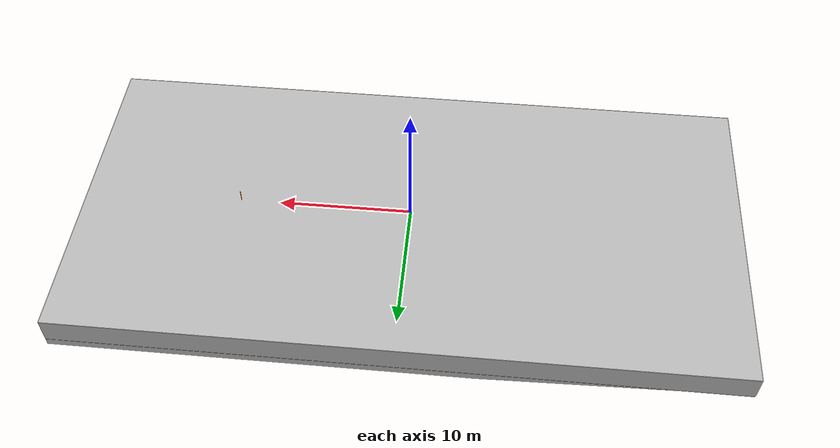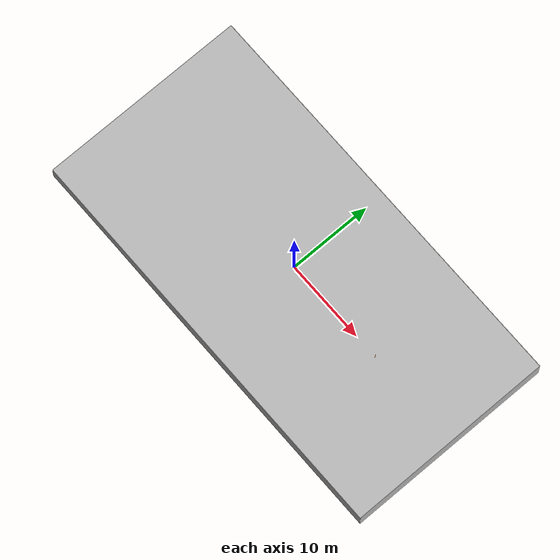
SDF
<?xml version="1.0"?>
<!-- Auto-generated by scripts/generate_worlds.py — do not edit by hand. -->
<sdf version="1.9">
  <world name="marv_prequal">
    <scene>
      <ambient>0.01 0.01 0.01 1.0</ambient>
      <background>0.05 0.08 0.15 1.0</background>
      <shadows>true</shadows>
    </scene>
    <physics name="1ms" type="ignored">
      <max_step_size>0.001</max_step_size>
      <real_time_factor>1.0</real_time_factor>
    </physics>
    <plugin filename="gz-sim-physics-system" name="gz::sim::systems::Physics"/>
    <plugin filename="gz-sim-user-commands-system" name="gz::sim::systems::UserCommands"/>
    <plugin filename="gz-sim-scene-broadcaster-system" name="gz::sim::systems::SceneBroadcaster"/>
    <plugin filename="gz-sim-sensors-system" name="gz::sim::systems::Sensors">
      <render_engine>ogre2</render_engine>
    </plugin>
    <!-- Required for ArduPilotPlugin JSON (imu_sensor -> imuMsgValid). -->
    <plugin filename="gz-sim-imu-system" name="gz::sim::systems::Imu"/>
    <spherical_coordinates>
      <surface_model>EARTH_WGS84</surface_model>
      <world_frame_orientation>ENU</world_frame_orientation>
      <latitude_deg>1.309562</latitude_deg>
      <longitude_deg>103.7745783</longitude_deg>
      <elevation>0.0</elevation>
      <heading_deg>0.0</heading_deg>
    </spherical_coordinates>
    <light type="directional" name="sun1">
      <pose>50 0 150 0 0 0</pose>
      <diffuse>1 1 1 1</diffuse>
      <specular>0.1 0.1 0.1 1</specular>
      <direction>0.3 0.3 -1</direction>
      <cast_shadows>false</cast_shadows>
    </light>
    <light type="directional" name="sun_diffuse">
      <pose>-50 0 -150 0 0 0</pose>
      <diffuse>0.6 0.6 0.6 1</diffuse>
      <direction>-0.3 -0.3 -1</direction>
      <cast_shadows>false</cast_shadows>
    </light>
    <!-- Full pre-qual (bb_worlds). Sub spawn: x=0 y=0 z=-2 (3 m behind gate). Layout matches bb_worlds robosub_2025_prequali.world. -->
    <include>
      <name>pool</name>
      <uri>model://sp_swimming_pool</uri>
      <pose>0 0 0 0 0 0</pose>
    </include>
    <include>
      <name>surface</name>
      <uri>model://pool_waves</uri>
      <pose>0 0 0 0 0 0</pose>
    </include>
    <include>
      <name>course</name>
      <uri>model://marv_prequal_course_bb</uri>
      <pose>3 0 -2 0 0 0</pose>
    </include>

    <plugin filename="gz-sim-buoyancy-system" name="gz::sim::systems::Buoyancy">
      <graded_buoyancy>
        <default_density>1000</default_density>
        <density_change>
          <above_depth>0</above_depth>
          <density>1</density>
        </density_change>
      </graded_buoyancy>
    </plugin>
  </world>
</sdf>

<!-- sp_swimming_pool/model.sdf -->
<sdf version="1.11">
  <model name="sp_swimming_pool">
    <static>true</static>
    <link name="link">

      <visual name="pool">
        <pose>0 0 0 0 0 0</pose>
        <geometry>
          <mesh>
            <!-- The URI should refer to the 3D mesh. The "model:"
                URI scheme indicates that the we are referencing a Gazebo
                model. -->
            <uri>model://sp_swimming_pool/meshes/sppool.dae</uri>
          </mesh>
        </geometry>
      </visual>

      <collision name="pool_collision">
        <pose>0 0 0 0 0 0</pose>
        <geometry>
          <mesh>
            <uri>model://sp_swimming_pool/meshes/sppool.stl</uri>
          </mesh>
        </geometry>
      </collision>
      <collision name="pool_base">
        <pose>0 0 -2.05 0 0 0</pose>
        <geometry>
          <box>
            <size>50 25 0.1</size>
          </box>
        </geometry>
      </collision>
    </link>
  </model>
</sdf>

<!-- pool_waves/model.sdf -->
<sdf version="1.6">
    <model name="pool_waves">
        <static>true</static>
        <link name="link">
            <visual name="visual">
                <geometry>
                    <mesh>
                        <uri>meshes/mesh1.dae</uri>
                    </mesh>
                </geometry>
                <plugin filename="gz-sim-shader-param-system" name="gz::sim::systems::ShaderParam">
                    <shader language="glsl">
                        <vertex>materials/programs/GerstnerWaves_vs_330.glsl</vertex>
                        <fragment>materials/programs/GerstnerWaves_fs_330.glsl</fragment>
                    </shader>
                    <shader language="metal">
                        <vertex>materials/programs/GerstnerWaves_vs.metal</vertex>
                        <fragment>materials/programs/GerstnerWaves_fs.metal</fragment>
                    </shader>
                    <param>
                        <shader>vertex</shader>
                        <name>Nwaves</name>
                        <type>int</type>
                        <value>3</value>
                    </param>
                    <param>
                        <shader>vertex</shader>
                        <name>rescale</name>
                        <type>float</type>
                        <value>0.5</value>
                    </param>
                    <param>
                        <shader>vertex</shader>
                        <name>bumpScale</name>
                        <type>float_array</type>
                        <value>25 25</value>
                    </param>
                    <param>
                        <shader>vertex</shader>
                        <name>bumpSpeed</name>
                        <type>float_array</type>
                        <value>0.01 0.01</value>
                    </param>
                    <param>
                        <shader>vertex</shader>
                        <name>amplitude</name>
                        <type>float_array</type>
                        <value>0.1 0.05 0.02</value>
                    </param>

                    <param>
                        <shader>vertex</shader>
                        <name>wavenumber</name>
                        <type>float_array</type>
                        <value>0.028 0.0896 0.0504</value>
                    </param>
                    <param>
                        <shader>vertex</shader>
                        <name>omega</name>
                        <type>float_array</type>
                        <value>0.5 1.7 1.0</value>
                    </param>
                    <param>
                        <shader>vertex</shader>
                        <name>dir0</name>
                        <type>float_array</type>
                        <value>-1.0 0.0</value>
                    </param>
                    <param>
                        <shader>vertex</shader>
                        <name>dir1</name>
                        <type>float_array</type>
                        <value>-0.7 0.7</value>
                    </param>
                    <param>
                        <shader>vertex</shader>
                        <name>dir2</name>
                        <type>float_array</type>
                        <value>0.7 0.7</value>
                    </param>
                    <param>
                        <shader>vertex</shader>
                        <name>steepness</name>
                        <type>float_array</type>
                        <value>1.0 1.5 0.8</value>
                    </param>
                    <param>
                        <shader>vertex</shader>
                        <name>tau</name>
                        <type>float</type>
                        <value>2.0</value>
                    </param>
                    <param>
                        <shader>vertex</shader>
                        <name>camera_position_object_space</name>
                    </param>
                    <param>
                        <shader>vertex</shader>
                        <name>worldviewproj_matrix</name>
                    </param>
                    <param>
                        <shader>vertex</shader>
                        <name>t</name>
                        <value>TIME</value>
                    </param>
                    <param>
                        <shader>fragment</shader>
                        <name>hdrMultiplier</name>
                        <type>float</type>
                        <value>0.4</value>
                    </param>
                    <param>
                        <shader>fragment</shader>
                        <name>fresnelPower</name>
                        <type>float</type>
                        <value>5.0</value>
                    </param>
                    <param>
                        <shader>fragment</shader>
                        <name>shallowColor</name>
                        <type>float_array</type>
                        <value>0.0 0.1 0.3 1.0</value>
                    </param>
                    <param>
                        <shader>fragment</shader>
                        <name>deepColor</name>
                        <type>float_array</type>
                        <value>0.0 0.05 0.02 1.0</value>
                    </param>
                    <param>
                        <shader>fragment</shader>
                        <name>cubeMap</name>
                        <type>texture_cube</type>
                        <value>materials/textures/skybox_lowres.dds</value>
                        <!-- arg: texture coord set index -->
                        <arg>1</arg>
                    </param>
                    <param>
                        <shader>fragment</shader>
                        <name>bumpMap</name>
                        <type>texture</type>
                        <value>materials/textures/wave_normals.dds</value>
                    </param>
                </plugin>
            </visual>
        </link>
    </model>
</sdf>

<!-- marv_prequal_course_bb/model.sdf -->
<!-- Pre-qual course: bb_worlds gate mesh + Rustoleum neon orange pillar. -->
<sdf version="1.9">
  <model name="marv_prequal_course_bb">
    <static>true</static>
    <link name="link">
      <visual name="gate">
        <pose>0 0 0 1.57079632679 0 0</pose>
        <geometry>
          <mesh>
            <uri>model://robosub25/prequali_task/gate.dae</uri>
          </mesh>
        </geometry>
      </visual>
      <collision name="gate_collision">
        <pose>0 0 0 1.57079632679 0 0</pose>
        <geometry>
          <mesh>
            <uri>model://robosub25/prequali_task/gate.dae</uri>
          </mesh>
        </geometry>
      </collision>
      <visual name="pillar">
        <pose>10 0 0 1.57079632679 0 0</pose>
        <geometry>
          <mesh>
            <uri>model://robosub25/prequali_task/pillar.dae</uri>
          </mesh>
        </geometry>
        <material>
          <!-- Rustoleum Neon Orange (fluorescent) -->
          <ambient>0.95 0.32 0.0 1</ambient>
          <diffuse>1.0 0.40 0.0 1</diffuse>
          <specular>0.2 0.2 0.2 1</specular>
          <emissive>0.35 0.10 0.0 1</emissive>
        </material>
      </visual>
      <collision name="pillar_collision">
        <pose>10 0 0 1.57079632679 0 0</pose>
        <geometry>
          <mesh>
            <uri>model://robosub25/prequali_task/pillar.dae</uri>
          </mesh>
        </geometry>
      </collision>
    </link>
  </model>
</sdf>
